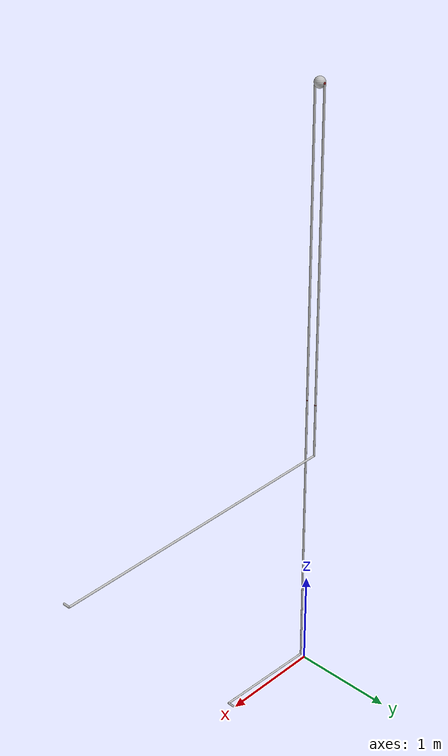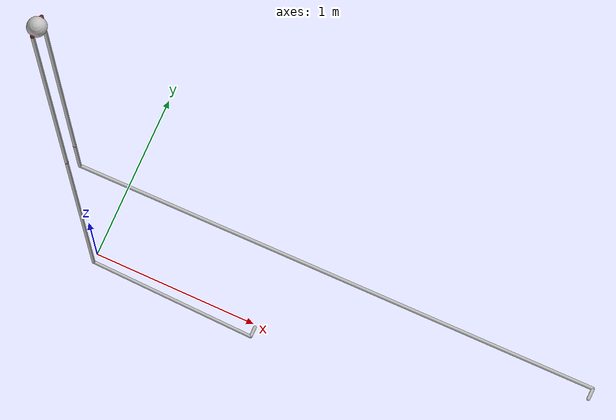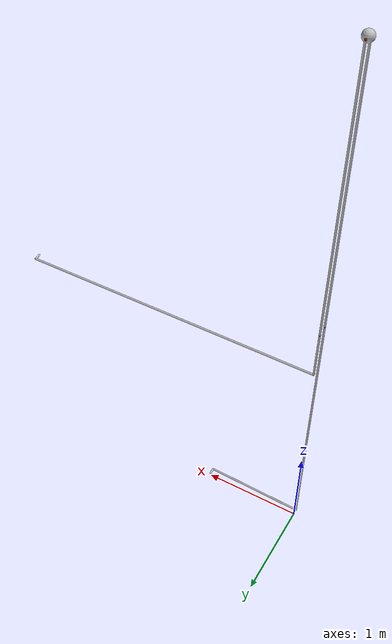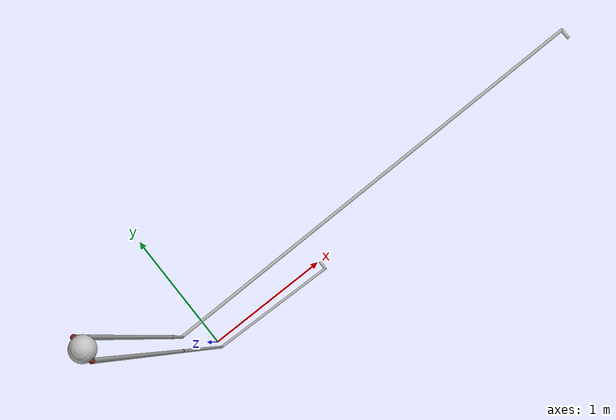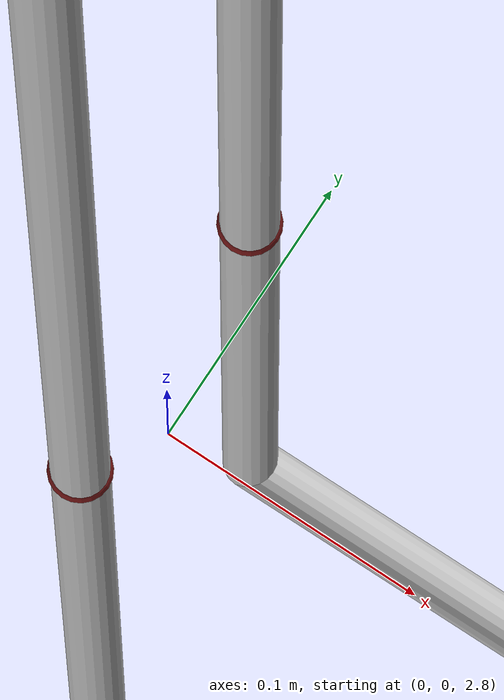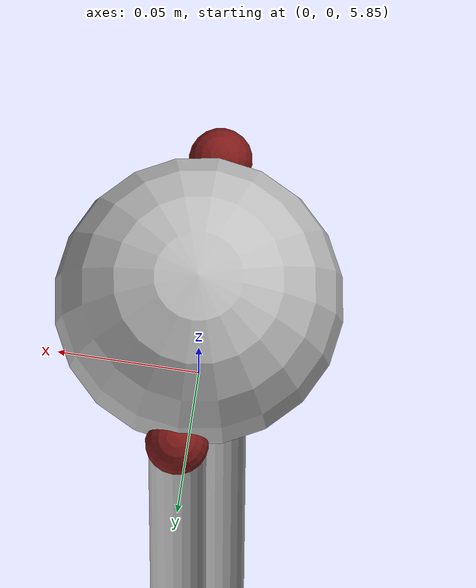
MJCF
<?xml version="1.0" ?>
<mujoco>
    <default>
        <joint armature="0.0" damping="0.01" type="hinge" range="-150 0" axis="0 -1 0"/>
        <geom condim="3" friction="1.5 1.0 1.0" margin="0.001"/>
        <default class="motor">
            <cylinder gear="100" ctrllimited="true" ctrlrange="-1 1"/>
        </default>
    </default>
    <worldbody>
        <body name="Base" pos="0.0 0.0 5.9909810726238355">
            <joint type="free"/>
            <geom type="sphere" rgba="0.75 0.75 0.75 1.0" size="0.05" mass="0.02"/>
            <body name="rod_0.1" pos="0.0 -0.05 -1.493559636811174">
                <geom name="geom_0.1" type="capsule" fromto="-0.0 -0.0 1.493559636811174 0.0 0.0 -1.493559636811174" size="0.01" rgba="0.75 0.75 0.75 1.0" density="159.15494309189535"/>
                <site name="site_0.1" pos="0 0 0" quat="0.7071067811865476 -0.0 0.7071067811865475 0.0"/>
                <joint name="joint_Base=rod_0.1" pos="-0.0 -0.0 1.493559636811174" range="-45 45"/>
                <body name="p0" pos="-0.0 -0.0 1.493559636811174">
                    <geom type="sphere" size="0.011000000000000001" rgba="0.5 0.1 0.1 1.0" density="23873.2414637843"/>
                    <site name="p0"/>
                </body>
                <body name="rod_1.2" pos="0.0 0.0 -2.989740536311918">
                    <geom name="geom_1.2" type="capsule" fromto="-0.0 -0.0 1.4961808995007437 0.0 0.0 -1.4961808995007437" size="0.01" rgba="0.75 0.75 0.75 1.0" density="159.15494309189535"/>
                    <site name="site_1.2" pos="0 0 0" quat="0.7071067811865476 -0.0 0.7071067811865475 0.0"/>
                    <joint name="joint_rod_0.1=rod_1.2" pos="-0.0 -0.0 1.4961808995007437" range="-150 0"/>
                    <body name="p1" pos="-0.0 -0.0 1.4961808995007437">
                        <geom type="sphere" size="0.011000000000000001" rgba="0.5 0.1 0.1 1.0" density="23873.2414637843"/>
                        <site name="p1"/>
                    </body>
                    <body name="rod_2.3" pos="0.5086792549549121 -0.012500000000000004 -1.4961808995007437">
                        <geom name="geom_2.3" type="capsule" fromto="-0.5086792549549121 0.012500000000000004 -0.0 0.5086792549549121 -0.012500000000000004 0.0" size="0.01" rgba="0.75 0.75 0.75 1.0" density="159.15494309189535"/>
                        <site name="site_2.3" pos="0 0 0" quat="0.9999245495669603 0.0 0.0 -0.01228393964945758"/>
                        <body name="rod_3.4" pos="0.5086792549549121 0.017499999999999995 0.0">
                            <geom name="geom_3.4" type="capsule" fromto="-0.0 -0.03 -0.0 0.0 0.03 0.0" size="0.01" rgba="0.75 0.75 0.75 1.0" density="159.15494309189535"/>
                            <site name="site_3.4" pos="0 0 0" quat="0.7071067811865476 0.0 0.0 0.7071067811865475"/>
                        </body>
                    </body>
                </body>
            </body>
            <body name="rod_5.6" pos="0.0 0.05 -1.4999295985114531">
                <geom name="geom_5.6" type="capsule" fromto="-0.0 -0.0 1.4999295985114531 0.0 0.0 -1.4999295985114531" size="0.01" rgba="0.75 0.75 0.75 1.0" density="159.15494309189535"/>
                <site name="site_5.6" pos="0 0 0" quat="0.7071067811865476 -0.0 0.7071067811865475 0.0"/>
                <joint name="joint_Base=rod_5.6" pos="-0.0 -0.0 1.4999295985114531" range="-45 45"/>
                <body name="p5" pos="-0.0 -0.0 1.4999295985114531">
                    <geom type="sphere" size="0.011000000000000001" rgba="0.5 0.1 0.1 1.0" density="23873.2414637843"/>
                    <site name="p5"/>
                </body>
                <body name="rod_6.7" pos="0.0 0.0 -1.772575504609471">
                    <geom name="geom_6.7" type="capsule" fromto="-0.0 -0.0 0.272645906098018 0.0 0.0 -0.272645906098018" size="0.01" rgba="0.75 0.75 0.75 1.0" density="159.15494309189535"/>
                    <site name="site_6.7" pos="0 0 0" quat="0.7071067811865476 -0.0 0.7071067811865475 0.0"/>
                    <joint name="joint_rod_5.6=rod_6.7" pos="-0.0 -0.0 0.272645906098018" range="-150 0"/>
                    <body name="p6" pos="-0.0 -0.0 0.272645906098018">
                        <geom type="sphere" size="0.011000000000000001" rgba="0.5 0.1 0.1 1.0" density="23873.2414637843"/>
                        <site name="p6"/>
                    </body>
                    <body name="rod_7.8" pos="1.4915991534278359 0.012500000000000004 -0.272645906098018">
                        <geom name="geom_7.8" type="capsule" fromto="-1.4915991534278359 -0.012500000000000004 -0.0 1.4915991534278359 0.012500000000000004 0.0" size="0.01" rgba="0.75 0.75 0.75 1.0" density="159.15494309189535"/>
                        <site name="site_7.8" pos="0 0 0" quat="0.9999912218132787 0.0 0.0 0.004190023435018112"/>
                        <body name="rod_8.9" pos="1.4915991534278359 -0.017499999999999995 0.0">
                            <geom name="geom_8.9" type="capsule" fromto="-0.0 0.03 -0.0 0.0 -0.03 0.0" size="0.01" rgba="0.75 0.75 0.75 1.0" density="159.15494309189535"/>
                            <site name="site_8.9" pos="0 0 0" quat="0.7071067811865476 0.0 0.0 -0.7071067811865475"/>
                        </body>
                    </body>
                </body>
            </body>
        </body>
    </worldbody>
    <actuator/>
    <sensor>
        <accelerometer site="site_0.1"/>
        <gyro site="site_0.1"/>
        <magnetometer site="site_0.1"/>
        <accelerometer site="site_1.2"/>
        <gyro site="site_1.2"/>
        <magnetometer site="site_1.2"/>
        <accelerometer site="site_2.3"/>
        <gyro site="site_2.3"/>
        <magnetometer site="site_2.3"/>
        <accelerometer site="site_3.4"/>
        <gyro site="site_3.4"/>
        <magnetometer site="site_3.4"/>
        <accelerometer site="site_5.6"/>
        <gyro site="site_5.6"/>
        <magnetometer site="site_5.6"/>
        <accelerometer site="site_6.7"/>
        <gyro site="site_6.7"/>
        <magnetometer site="site_6.7"/>
        <accelerometer site="site_7.8"/>
        <gyro site="site_7.8"/>
        <magnetometer site="site_7.8"/>
        <accelerometer site="site_8.9"/>
        <gyro site="site_8.9"/>
        <magnetometer site="site_8.9"/>
    </sensor>
    <contact>
        <pair geom1="geom_0.1" geom2="floor"/>
        <pair geom1="geom_1.2" geom2="floor"/>
        <pair geom1="geom_2.3" geom2="floor"/>
        <pair geom1="geom_3.4" geom2="floor"/>
        <pair geom1="geom_5.6" geom2="floor"/>
        <pair geom1="geom_6.7" geom2="floor"/>
        <pair geom1="geom_7.8" geom2="floor"/>
        <pair geom1="geom_8.9" geom2="floor"/>
    </contact>
</mujoco>
